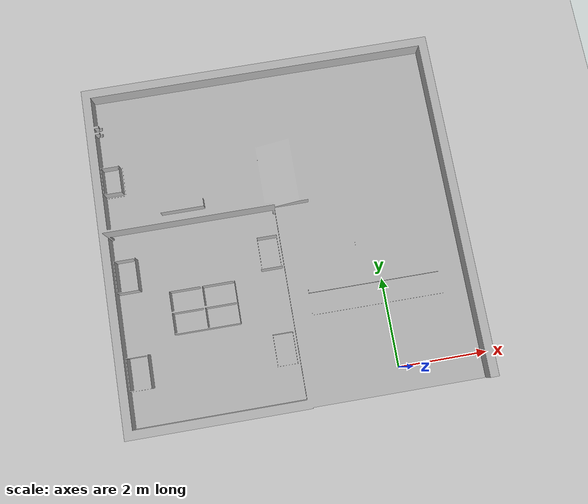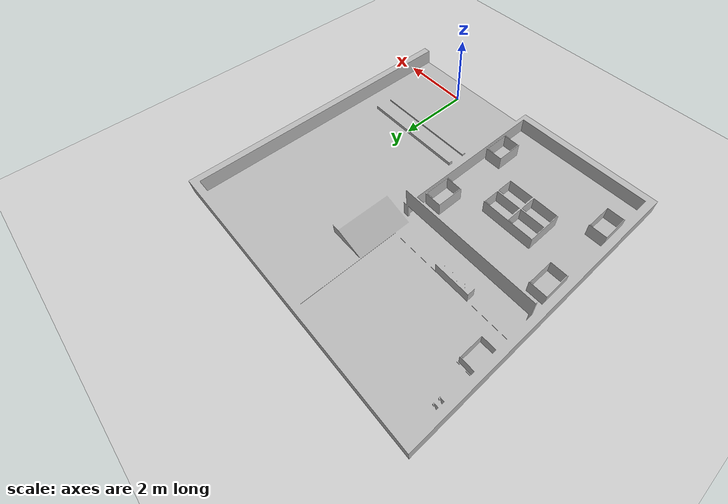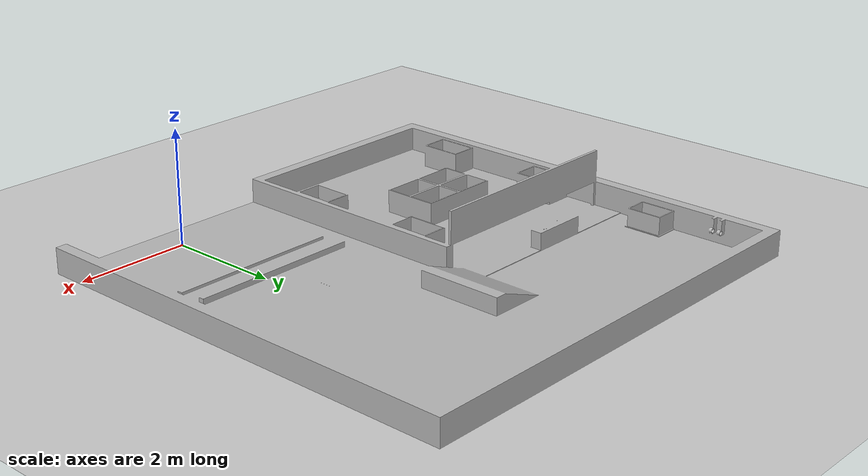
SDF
<?xml version="1.0" ?>
<sdf version="1.4">
  <!-- We use a custom world for the rrbot so that the camera angle is launched correctly -->

  <world name="default">
    <include>
      <uri>model://ground_plane</uri>
    </include>

    <!-- Global light source -->
    <include>
      <uri>model://sun</uri>
    </include>

    <!-- Focus camera on tall pendulum -->
    <gui fullscreen='0'>
      <camera name='user_camera'>
        <pose>4.927360 -4.376610 3.740080 0.000000 0.275643 2.356190</pose>
        <view_controller>orbit</view_controller>
      </camera>
    </gui>

    <model name="map">
      <pose>-5.945 -0.55 0 1.5708 -0 0</pose> <!-- meter -->
      <static>true</static>
      <link name="map">
        <visual name="visual">
          <geometry>
            <mesh>
              <uri>../worlds/27_TDK.STL</uri>
              <scale>1 1 1</scale>
            </mesh>
          </geometry>
        </visual>
          <collision name='collision'>
          <laser_retro>0</laser_retro>
          <max_contacts>10</max_contacts>
          <pose>0 0 0 0 -0 0</pose>
          <geometry>
            <mesh>
              <uri>../worlds/27_TDK.STL</uri>
              <scale>1 1 1</scale>
            </mesh>
          </geometry>
          <surface>
            <friction>
              <ode>
                <mu>1</mu>
                <mu2>1</mu2>
                <fdir1>0 0 0</fdir1>
                <slip1>0</slip1>
                <slip2>0</slip2>
              </ode>
              <torsional>
                <coefficient>1</coefficient>
                <patch_radius>0</patch_radius>
                <surface_radius>0</surface_radius>
                <use_patch_radius>1</use_patch_radius>
                <ode>
                  <slip>0</slip>
                </ode>
              </torsional>
            </friction>
            <bounce>
              <restitution_coefficient>0</restitution_coefficient>
              <threshold>1e+06</threshold>
            </bounce>
            <contact>
              <collide_without_contact>0</collide_without_contact>
              <collide_without_contact_bitmask>1</collide_without_contact_bitmask>
              <collide_bitmask>1</collide_bitmask>
              <ode>
                <soft_cfm>0</soft_cfm>
                <soft_erp>0.2</soft_erp>
                <kp>1e+13</kp>
                <kd>1</kd>
                <max_vel>0.01</max_vel>
                <min_depth>0</min_depth>
              </ode>
              <bullet>
                <split_impulse>1</split_impulse>
                <split_impulse_penetration_threshold>-0.01</split_impulse_penetration_threshold>
                <soft_cfm>0</soft_cfm>
                <soft_erp>0.2</soft_erp>
                <kp>1e+13</kp>
                <kd>1</kd>
              </bullet>
            </contact>
          </surface>
        </collision>
      </link>
    </model>

  </world>
</sdf>
